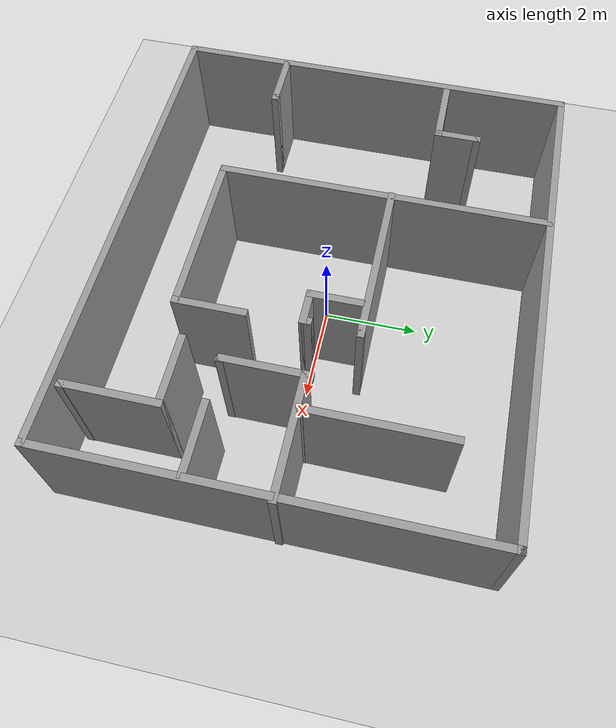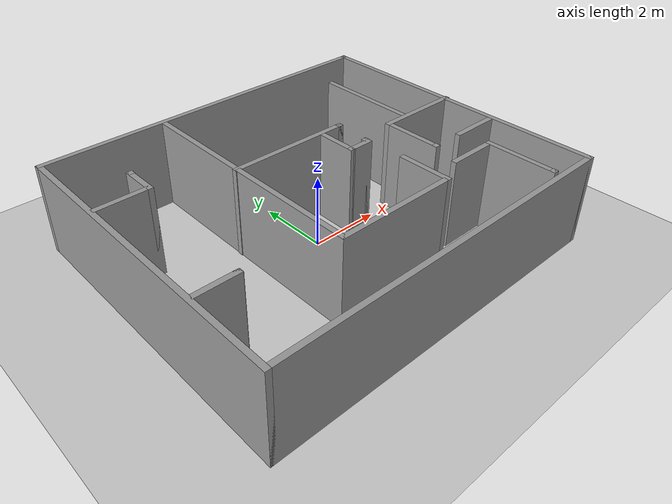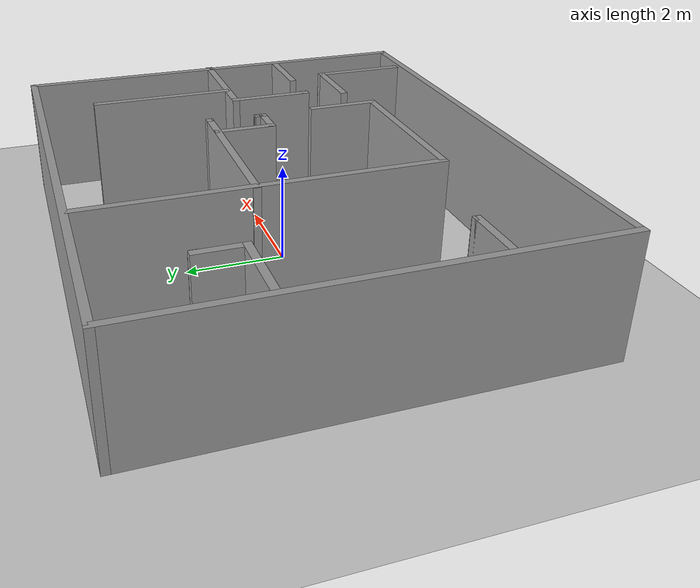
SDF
<?xml version="1.0" ?>

<sdf version="1.6">
  <world name="default">

    <include>
      <uri>model://sun</uri>
    </include>
    <include>
      <uri>model://ground_plane</uri>
    </include>
    <include>
      <pose>0 0 0.33 0 0 0</pose>
      <uri>model://rover</uri>
    </include>

    <include>
      <pose>0 0 0 0 0 0</pose>
      <uri>model://room</uri>
    </include>

  </world>
</sdf>

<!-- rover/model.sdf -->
<sdf version='1.6'>
  <model name='rover'>
    <link name='chassis'>
      <pose frame=''>-0 0 0.07 0 -0 0</pose>
      <inertial>
        <mass>1.14395</mass>
        <inertia>
          <ixx>0.126164</ixx>
          <ixy>0</ixy>
          <ixz>0</ixz>
          <iyy>0.416519</iyy>
          <iyz>0</iyz>
          <izz>0.481014</izz>
        </inertia>
        <pose frame=''>0 0 0 0 -0 0</pose>
      </inertial>
      <sensor name='sensor_ray' type='ray'>
        <pose frame=''>0 0 0.1 0 -0 0</pose>
        <ray>
          <scan>
            <horizontal>
              <samples>560</samples>
              <resolution>1</resolution>
              <min_angle>-3.14159</min_angle>
              <max_angle>3.139</max_angle>
            </horizontal>
            <vertical>
              <samples>1</samples>
              <min_angle>0</min_angle>
              <max_angle>0</max_angle>
            </vertical>
          </scan>
          <range>
            <min>0.05</min>
            <max>10</max>
          </range>
        </ray>
        <always_on>1</always_on>
        <visualize>0</visualize>
        <update_rate>100</update_rate>
        <plugin name='laser' filename='libgazebo_ros_ray_sensor.so'>
          <ros>
            <namespace>/rover</namespace>
            <remapping>~/out:=laser_scan</remapping>
          </ros>
          <output_type>sensor_msgs/LaserScan</output_type>
        </plugin>
      </sensor>
      <self_collide>0</self_collide>
      <enable_wind>0</enable_wind>
      <kinematic>0</kinematic>
      <gravity>1</gravity>
      <visual name='visual'>
        <geometry>
          <box>
            <size>0.3 0.15 0.08</size>
          </box>
        </geometry>
        <material>
          <shader type='pixel'>
            <normal_map>__default__</normal_map>
          </shader>
          <script>
            <name>ModelPreview_1::chassis::visual_MATERIAL_</name>
            <uri>__default__</uri>
          </script>
          <ambient>0.451 0.824 0.086 1</ambient>
          <diffuse>0 0 0 1</diffuse>
          <specular>0 0 0 1</specular>
          <emissive>0 0 0 1</emissive>
        </material>
        <pose frame=''>0 0 0 0 -0 0</pose>
        <transparency>0</transparency>
        <cast_shadows>1</cast_shadows>
      </visual>
      <collision name='collision'>
        <laser_retro>0</laser_retro>
        <max_contacts>10</max_contacts>
        <pose frame=''>0 0 0 0 -0 0</pose>
        <geometry>
          <box>
            <size>0.3 0.15 0.08</size>
          </box>
        </geometry>
        <surface>
          <friction>
            <ode>
              <mu>1</mu>
              <mu2>1</mu2>
              <fdir1>0 0 0</fdir1>
              <slip1>0</slip1>
              <slip2>0</slip2>
            </ode>
            <torsional>
              <coefficient>1</coefficient>
              <patch_radius>0</patch_radius>
              <surface_radius>0</surface_radius>
              <use_patch_radius>1</use_patch_radius>
              <ode>
                <slip>0</slip>
              </ode>
            </torsional>
          </friction>
          <bounce>
            <restitution_coefficient>0</restitution_coefficient>
            <threshold>1e+06</threshold>
          </bounce>
          <contact>
            <collide_without_contact>0</collide_without_contact>
            <collide_without_contact_bitmask>1</collide_without_contact_bitmask>
            <collide_bitmask>1</collide_bitmask>
            <ode>
              <soft_cfm>0</soft_cfm>
              <soft_erp>0.2</soft_erp>
              <kp>1e+13</kp>
              <kd>1</kd>
              <max_vel>0</max_vel>
              <min_depth>0</min_depth>
            </ode>
            <bullet>
              <split_impulse>1</split_impulse>
              <split_impulse_penetration_threshold>-0.01</split_impulse_penetration_threshold>
              <soft_cfm>0</soft_cfm>
              <soft_erp>0.2</soft_erp>
              <kp>1e+13</kp>
              <kd>1</kd>
            </bullet>
          </contact>
        </surface>
      </collision>
    </link>
    <link name='caster'>
      <pose frame=''>-0.15 -0 0.017 0 -0 0</pose>
      <inertial>
        <mass>1</mass>
        <inertia>
          <ixx>0.1</ixx>
          <ixy>0</ixy>
          <ixz>0</ixz>
          <iyy>0.1</iyy>
          <iyz>0</iyz>
          <izz>0.1</izz>
        </inertia>
        <pose frame=''>0 0 0 0 -0 0</pose>
      </inertial>
      <self_collide>0</self_collide>
      <enable_wind>0</enable_wind>
      <kinematic>0</kinematic>
      <gravity>1</gravity>
      <visual name='visual'>
        <geometry>
          <sphere>
            <radius>0.017</radius>
          </sphere>
        </geometry>
        <material>
          <shader type='pixel'>
            <normal_map>__default__</normal_map>
          </shader>
          <script>
            <name>ModelPreview_1::caster::visual_MATERIAL_</name>
            <uri>__default__</uri>
          </script>
          <ambient>0 0 0 1</ambient>
          <diffuse>0 0 0 1</diffuse>
          <specular>0 0 0 1</specular>
          <emissive>0 0 0 1</emissive>
        </material>
        <pose frame=''>0 0 0 0 -0 0</pose>
        <transparency>0</transparency>
        <cast_shadows>1</cast_shadows>
      </visual>
      <collision name='collision'>
        <laser_retro>0</laser_retro>
        <max_contacts>10</max_contacts>
        <pose frame=''>0 0 0 0 -0 0</pose>
        <geometry>
          <sphere>
            <radius>0.017</radius>
          </sphere>
        </geometry>
        <surface>
          <friction>
            <ode>
              <mu>0</mu>
              <mu2>0</mu2>
              <fdir1>0 0 0</fdir1>
              <slip1>1</slip1>
              <slip2>1</slip2>
            </ode>
            <torsional>
              <coefficient>1</coefficient>
              <patch_radius>0</patch_radius>
              <surface_radius>0</surface_radius>
              <use_patch_radius>1</use_patch_radius>
              <ode>
                <slip>0</slip>
              </ode>
            </torsional>
          </friction>
          <bounce>
            <restitution_coefficient>0</restitution_coefficient>
            <threshold>1e+06</threshold>
          </bounce>
          <contact>
            <collide_without_contact>0</collide_without_contact>
            <collide_without_contact_bitmask>1</collide_without_contact_bitmask>
            <collide_bitmask>1</collide_bitmask>
            <ode>
              <soft_cfm>0</soft_cfm>
              <soft_erp>0.2</soft_erp>
              <kp>1e+13</kp>
              <kd>1</kd>
              <max_vel>0</max_vel>
              <min_depth>0</min_depth>
            </ode>
            <bullet>
              <split_impulse>1</split_impulse>
              <split_impulse_penetration_threshold>-0.01</split_impulse_penetration_threshold>
              <soft_cfm>0</soft_cfm>
              <soft_erp>0.2</soft_erp>
              <kp>1e+13</kp>
              <kd>1</kd>
            </bullet>
          </contact>
        </surface>
      </collision>
    </link>
    <link name='left_wheel'>
      <pose frame=''>0.13 0.09 0.034 -1.5707 -0 -0</pose>
      <inertial>
        <mass>2</mass>
        <inertia>
          <ixx>0.145833</ixx>
          <ixy>0</ixy>
          <ixz>0</ixz>
          <iyy>0.145833</iyy>
          <iyz>0</iyz>
          <izz>0.125</izz>
        </inertia>
        <pose frame=''>0 0 0 0 -0 0</pose>
      </inertial>
      <self_collide>0</self_collide>
      <enable_wind>0</enable_wind>
      <kinematic>0</kinematic>
      <gravity>1</gravity>
      <visual name='visual'>
        <geometry>
          <cylinder>
            <radius>0.034</radius>
            <length>0.0269999</length>
          </cylinder>
        </geometry>
        <material>
          <shader type='pixel'>
            <normal_map>__default__</normal_map>
          </shader>
          <script>
            <name>ModelPreview_1::left_wheel::visual_MATERIAL_</name>
            <uri>__default__</uri>
          </script>
          <ambient>0 0 0 1</ambient>
          <diffuse>0 0 0 1</diffuse>
          <specular>0 0 0 1</specular>
          <emissive>0 0 0 1</emissive>
        </material>
        <pose frame=''>0 0 0 0 -0 0</pose>
        <transparency>0</transparency>
        <cast_shadows>1</cast_shadows>
      </visual>
      <collision name='collision'>
        <laser_retro>0</laser_retro>
        <max_contacts>10</max_contacts>
        <pose frame=''>0 0 0 0 -0 0</pose>
        <geometry>
          <cylinder>
            <radius>0.034</radius>
            <length>0.027</length>
          </cylinder>
        </geometry>
        <surface>
          <friction>
            <ode>
              <mu>1</mu>
              <mu2>1</mu2>
              <fdir1>0 0 0</fdir1>
              <slip1>0</slip1>
              <slip2>0</slip2>
            </ode>
            <torsional>
              <coefficient>1</coefficient>
              <patch_radius>0</patch_radius>
              <surface_radius>0</surface_radius>
              <use_patch_radius>1</use_patch_radius>
              <ode>
                <slip>0</slip>
              </ode>
            </torsional>
          </friction>
          <bounce>
            <restitution_coefficient>0</restitution_coefficient>
            <threshold>1e+06</threshold>
          </bounce>
          <contact>
            <collide_without_contact>0</collide_without_contact>
            <collide_without_contact_bitmask>1</collide_without_contact_bitmask>
            <collide_bitmask>1</collide_bitmask>
            <ode>
              <soft_cfm>0</soft_cfm>
              <soft_erp>0.2</soft_erp>
              <kp>1e+13</kp>
              <kd>1</kd>
              <max_vel>0</max_vel>
              <min_depth>0</min_depth>
            </ode>
            <bullet>
              <split_impulse>1</split_impulse>
              <split_impulse_penetration_threshold>-0.01</split_impulse_penetration_threshold>
              <soft_cfm>0</soft_cfm>
              <soft_erp>0.2</soft_erp>
              <kp>1e+13</kp>
              <kd>1</kd>
            </bullet>
          </contact>
        </surface>
      </collision>
    </link>
    <link name='right_wheel'>
      <pose frame=''>0.13 -0.09 0.034 -1.5707 -0 -0</pose>
      <inertial>
        <mass>2</mass>
        <inertia>
          <ixx>0.145833</ixx>
          <ixy>0</ixy>
          <ixz>0</ixz>
          <iyy>0.145833</iyy>
          <iyz>0</iyz>
          <izz>0.125</izz>
        </inertia>
        <pose frame=''>0 0 0 0 -0 0</pose>
      </inertial>
      <self_collide>0</self_collide>
      <enable_wind>0</enable_wind>
      <kinematic>0</kinematic>
      <gravity>1</gravity>
      <visual name='visual'>
        <geometry>
          <cylinder>
            <radius>0.034</radius>
            <length>0.027</length>
          </cylinder>
        </geometry>
        <material>
          <shader type='pixel'>
            <normal_map>__default__</normal_map>
          </shader>
          <script>
            <name>ModelPreview_1::right_wheel::visual_MATERIAL_</name>
            <uri>__default__</uri>
          </script>
          <ambient>0 0 0 1</ambient>
          <diffuse>0 0 0 1</diffuse>
          <specular>0 0 0 1</specular>
          <emissive>0 0 0 1</emissive>
        </material>
        <pose frame=''>0 0 0 0 -0 0</pose>
        <transparency>0</transparency>
        <cast_shadows>1</cast_shadows>
      </visual>
      <collision name='collision'>
        <laser_retro>0</laser_retro>
        <max_contacts>10</max_contacts>
        <pose frame=''>0 0 0 0 -0 0</pose>
        <geometry>
          <cylinder>
            <radius>0.034</radius>
            <length>0.027</length>
          </cylinder>
        </geometry>
        <surface>
          <friction>
            <ode>
              <mu>1</mu>
              <mu2>1</mu2>
              <fdir1>0 0 0</fdir1>
              <slip1>0</slip1>
              <slip2>0</slip2>
            </ode>
            <torsional>
              <coefficient>1</coefficient>
              <patch_radius>0</patch_radius>
              <surface_radius>0</surface_radius>
              <use_patch_radius>1</use_patch_radius>
              <ode>
                <slip>0</slip>
              </ode>
            </torsional>
          </friction>
          <bounce>
            <restitution_coefficient>0</restitution_coefficient>
            <threshold>1e+06</threshold>
          </bounce>
          <contact>
            <collide_without_contact>0</collide_without_contact>
            <collide_without_contact_bitmask>1</collide_without_contact_bitmask>
            <collide_bitmask>1</collide_bitmask>
            <ode>
              <soft_cfm>0</soft_cfm>
              <soft_erp>0.2</soft_erp>
              <kp>1e+13</kp>
              <kd>1</kd>
              <max_vel>0</max_vel>
              <min_depth>0</min_depth>
            </ode>
            <bullet>
              <split_impulse>1</split_impulse>
              <split_impulse_penetration_threshold>-0.01</split_impulse_penetration_threshold>
              <soft_cfm>0</soft_cfm>
              <soft_erp>0.2</soft_erp>
              <kp>1e+13</kp>
              <kd>1</kd>
            </bullet>
          </contact>
        </surface>
      </collision>
    </link>
    <joint name='caster_wheel' type='ball'>
      <parent>chassis</parent>
      <child>caster</child>
      <pose frame=''>0 0 0 0 -0 0</pose>
      <physics>
        <ode>
          <limit>
            <cfm>0</cfm>
            <erp>0.2</erp>
          </limit>
          <suspension>
            <cfm>0</cfm>
            <erp>0.2</erp>
          </suspension>
        </ode>
      </physics>
    </joint>
    <joint name='left_wheel_joint' type='revolute'>
      <parent>chassis</parent>
      <child>left_wheel</child>
      <pose frame=''>0 0 0 0 -0 0</pose>
      <axis>
        <xyz>0 0 1</xyz>
        <use_parent_model_frame>0</use_parent_model_frame>
        <limit>
          <lower>-1.79769e+308</lower>
          <upper>1.79769e+308</upper>
          <effort>-1</effort>
          <velocity>-1</velocity>
        </limit>
        <dynamics>
          <spring_reference>0</spring_reference>
          <spring_stiffness>0</spring_stiffness>
          <damping>0</damping>
          <friction>0</friction>
        </dynamics>
      </axis>
      <physics>
        <ode>
          <limit>
            <cfm>0</cfm>
            <erp>0.2</erp>
          </limit>
          <suspension>
            <cfm>0</cfm>
            <erp>0.2</erp>
          </suspension>
        </ode>
      </physics>
    </joint>
    <joint name='right_wheel_joint' type='revolute'>
      <parent>chassis</parent>
      <child>right_wheel</child>
      <pose frame=''>0 0 0 0 -0 0</pose>
      <axis>
        <xyz>0 0 1</xyz>
        <use_parent_model_frame>0</use_parent_model_frame>
        <limit>
          <lower>-1.79769e+308</lower>
          <upper>1.79769e+308</upper>
          <effort>-1</effort>
          <velocity>-1</velocity>
        </limit>
        <dynamics>
          <spring_reference>0</spring_reference>
          <spring_stiffness>0</spring_stiffness>
          <damping>0</damping>
          <friction>0</friction>
        </dynamics>
      </axis>
      <physics>
        <ode>
          <limit>
            <cfm>0</cfm>
            <erp>0.2</erp>
          </limit>
          <suspension>
            <cfm>0</cfm>
            <erp>0.2</erp>
          </suspension>
        </ode>
      </physics>
    </joint>
    <static>0</static>
    <allow_auto_disable>1</allow_auto_disable>
    <plugin name='diff_drive' filename='libgazebo_ros_diff_drive.so'>
      <ros>
        <namespace>/rover</namespace>
        <remapping>cmd_vel:=cmd_vel</remapping>
        <remapping>odom:=odom</remapping>
      </ros>
      <left_joint>left_wheel_joint</left_joint>
      <right_joint>right_wheel_joint</right_joint>
      <wheel_separation>0.15</wheel_separation>
      <wheel_diameter>0.06</wheel_diameter>
      <max_wheel_torque>20</max_wheel_torque>
      <max_wheel_acceleration>1.0</max_wheel_acceleration>
      <publish_odom>1</publish_odom>
      <publish_odom_tf>1</publish_odom_tf>
      <publish_wheel_tf>1</publish_wheel_tf>
      <odometry_frame>odom</odometry_frame>
      <robot_base_frame>chassis</robot_base_frame>
    </plugin>
  </model>
</sdf>

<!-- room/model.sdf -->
<sdf version='1.6'>
  <model name='room'>
    <pose frame=''>1.92405 -0.118331 0 0 -0 0</pose>
    <link name='Wall_0'>
      <collision name='Wall_0_Collision'>
        <geometry>
          <box>
            <size>10.25 0.15 2.5</size>
          </box>
        </geometry>
        <pose frame=''>0 0 1.25 0 -0 0</pose>
      </collision>
      <visual name='Wall_0_Visual'>
        <pose frame=''>0 0 1.25 0 -0 0</pose>
        <geometry>
          <box>
            <size>10.25 0.15 2.5</size>
          </box>
        </geometry>
        <material>
          <script>
            <uri>file://media/materials/scripts/gazebo.material</uri>
            <name>Gazebo/Grey</name>
          </script>
          <ambient>1 1 1 1</ambient>
        </material>
        <meta>
          <layer>0</layer>
        </meta>
      </visual>
      <pose frame=''>-0.020113 4.3 0 0 -0 3.14159</pose>
    </link>
    <link name='Wall_1'>
      <collision name='Wall_1_Collision'>
        <geometry>
          <box>
            <size>8.75 0.15 2.5</size>
          </box>
        </geometry>
        <pose frame=''>0 0 1.25 0 -0 0</pose>
      </collision>
      <visual name='Wall_1_Visual'>
        <pose frame=''>0 0 1.25 0 -0 0</pose>
        <geometry>
          <box>
            <size>8.75 0.15 2.5</size>
          </box>
        </geometry>
        <material>
          <script>
            <uri>file://media/materials/scripts/gazebo.material</uri>
            <name>Gazebo/Grey</name>
          </script>
          <ambient>1 1 1 1</ambient>
        </material>
        <meta>
          <layer>0</layer>
        </meta>
      </visual>
      <pose frame=''>-5.07011 0 0 0 -0 -1.5708</pose>
    </link>
    <link name='Wall_10'>
      <collision name='Wall_10_Collision'>
        <geometry>
          <box>
            <size>3.5 0.15 2.5</size>
          </box>
        </geometry>
        <pose frame=''>0 0 1.25 0 -0 0</pose>
      </collision>
      <visual name='Wall_10_Visual'>
        <pose frame=''>0 0 1.25 0 -0 0</pose>
        <geometry>
          <box>
            <size>3.5 0.15 2.5</size>
          </box>
        </geometry>
        <material>
          <script>
            <uri>file://media/materials/scripts/gazebo.material</uri>
            <name>Gazebo/Grey</name>
          </script>
          <ambient>1 1 1 1</ambient>
        </material>
        <meta>
          <layer>0</layer>
        </meta>
      </visual>
      <pose frame=''>0.007067 1.02149 0 0 -0 0</pose>
    </link>
    <link name='Wall_11'>
      <collision name='Wall_11_Collision'>
        <geometry>
          <box>
            <size>0.16 0.15 2.5</size>
          </box>
        </geometry>
        <pose frame=''>0 0 1.25 0 -0 0</pose>
      </collision>
      <visual name='Wall_11_Visual'>
        <pose frame=''>0 0 1.25 0 -0 0</pose>
        <geometry>
          <box>
            <size>0.16 0.15 2.5</size>
          </box>
        </geometry>
        <material>
          <script>
            <uri>file://media/materials/scripts/gazebo.material</uri>
            <name>Gazebo/Grey</name>
          </script>
          <ambient>1 1 1 1</ambient>
        </material>
        <meta>
          <layer>0</layer>
        </meta>
      </visual>
      <pose frame=''>1.68707 1.02149 0 0 -0 0</pose>
    </link>
    <link name='Wall_13'>
      <collision name='Wall_13_Collision'>
        <geometry>
          <box>
            <size>1.25 0.15 2.5</size>
          </box>
        </geometry>
        <pose frame=''>0 0 1.25 0 -0 0</pose>
      </collision>
      <visual name='Wall_13_Visual'>
        <pose frame=''>0 0 1.25 0 -0 0</pose>
        <geometry>
          <box>
            <size>1.25 0.15 2.5</size>
          </box>
        </geometry>
        <material>
          <script>
            <uri>file://media/materials/scripts/gazebo.material</uri>
            <name>Gazebo/Grey</name>
          </script>
          <ambient>1 1 1 1</ambient>
        </material>
        <meta>
          <layer>0</layer>
        </meta>
      </visual>
      <pose frame=''>1.02729 0.451374 0 0 -0 -1.5708</pose>
    </link>
    <link name='Wall_14'>
      <collision name='Wall_14_Collision'>
        <geometry>
          <box>
            <size>0.75 0.15 2.5</size>
          </box>
        </geometry>
        <pose frame=''>0 0 1.25 0 -0 0</pose>
      </collision>
      <visual name='Wall_14_Visual'>
        <pose frame=''>0 0 1.25 0 -0 0</pose>
        <geometry>
          <box>
            <size>0.75 0.15 2.5</size>
          </box>
        </geometry>
        <material>
          <script>
            <uri>file://media/materials/scripts/gazebo.material</uri>
            <name>Gazebo/Grey</name>
          </script>
          <ambient>1 1 1 1</ambient>
        </material>
        <meta>
          <layer>0</layer>
        </meta>
      </visual>
      <pose frame=''>1.32729 -0.098626 0 0 -0 0</pose>
    </link>
    <link name='Wall_15'>
      <collision name='Wall_15_Collision'>
        <geometry>
          <box>
            <size>0.25 0.15 2.5</size>
          </box>
        </geometry>
        <pose frame=''>0 0 1.25 0 -0 0</pose>
      </collision>
      <visual name='Wall_15_Visual'>
        <pose frame=''>0 0 1.25 0 -0 0</pose>
        <geometry>
          <box>
            <size>0.25 0.15 2.5</size>
          </box>
        </geometry>
        <material>
          <script>
            <uri>file://media/materials/scripts/gazebo.material</uri>
            <name>Gazebo/Grey</name>
          </script>
          <ambient>1 1 1 1</ambient>
        </material>
        <meta>
          <layer>0</layer>
        </meta>
      </visual>
      <pose frame=''>1.62729 -0.048626 0 0 -0 1.5708</pose>
    </link>
    <link name='Wall_16'>
      <collision name='Wall_16_Collision'>
        <geometry>
          <box>
            <size>0.16 0.15 2.5</size>
          </box>
        </geometry>
        <pose frame=''>0 0 1.25 0 -0 0</pose>
      </collision>
      <visual name='Wall_16_Visual'>
        <pose frame=''>0 0 1.25 0 -0 0</pose>
        <geometry>
          <box>
            <size>0.16 0.15 2.5</size>
          </box>
        </geometry>
        <material>
          <script>
            <uri>file://media/materials/scripts/gazebo.material</uri>
            <name>Gazebo/Grey</name>
          </script>
          <ambient>1 1 1 1</ambient>
        </material>
        <meta>
          <layer>0</layer>
        </meta>
      </visual>
      <pose frame=''>1.63229 0.001374 0 0 -0 0</pose>
    </link>
    <link name='Wall_18'>
      <collision name='Wall_18_Collision'>
        <geometry>
          <box>
            <size>3 0.15 2.5</size>
          </box>
        </geometry>
        <pose frame=''>0 0 1.25 0 -0 0</pose>
      </collision>
      <visual name='Wall_18_Visual'>
        <pose frame=''>0 0 1.25 0 -0 0</pose>
        <geometry>
          <box>
            <size>3 0.15 2.5</size>
          </box>
        </geometry>
        <material>
          <script>
            <uri>file://media/materials/scripts/gazebo.material</uri>
            <name>Gazebo/Grey</name>
          </script>
          <ambient>1 1 1 1</ambient>
        </material>
        <meta>
          <layer>0</layer>
        </meta>
      </visual>
      <pose frame=''>3.38057 1.66819 0 0 -0 -1.5708</pose>
    </link>
    <link name='Wall_19'>
      <collision name='Wall_19_Collision'>
        <geometry>
          <box>
            <size>0.16 0.15 2.5</size>
          </box>
        </geometry>
        <pose frame=''>0 0 1.25 0 -0 0</pose>
      </collision>
      <visual name='Wall_19_Visual'>
        <pose frame=''>0 0 1.25 0 -0 0</pose>
        <geometry>
          <box>
            <size>0.16 0.15 2.5</size>
          </box>
        </geometry>
        <material>
          <script>
            <uri>file://media/materials/scripts/gazebo.material</uri>
            <name>Gazebo/Grey</name>
          </script>
          <ambient>1 1 1 1</ambient>
        </material>
        <meta>
          <layer>0</layer>
        </meta>
      </visual>
      <pose frame=''>3.38557 0.243186 0 0 -0 0</pose>
    </link>
    <link name='Wall_2'>
      <collision name='Wall_2_Collision'>
        <geometry>
          <box>
            <size>10.25 0.15 2.5</size>
          </box>
        </geometry>
        <pose frame=''>0 0 1.25 0 -0 0</pose>
      </collision>
      <visual name='Wall_2_Visual'>
        <pose frame=''>0 0 1.25 0 -0 0</pose>
        <geometry>
          <box>
            <size>10.25 0.15 2.5</size>
          </box>
        </geometry>
        <material>
          <script>
            <uri>file://media/materials/scripts/gazebo.material</uri>
            <name>Gazebo/Grey</name>
          </script>
          <ambient>1 1 1 1</ambient>
        </material>
        <meta>
          <layer>0</layer>
        </meta>
      </visual>
      <pose frame=''>-0.020113 -4.3 0 0 -0 0</pose>
    </link>
    <link name='Wall_21'>
      <collision name='Wall_21_Collision'>
        <geometry>
          <box>
            <size>2.5 0.15 2.5</size>
          </box>
        </geometry>
        <pose frame=''>0 0 1.25 0 -0 0</pose>
      </collision>
      <visual name='Wall_21_Visual'>
        <pose frame=''>0 0 1.25 0 -0 0</pose>
        <geometry>
          <box>
            <size>2.5 0.15 2.5</size>
          </box>
        </geometry>
        <material>
          <script>
            <uri>file://media/materials/scripts/gazebo.material</uri>
            <name>Gazebo/Grey</name>
          </script>
          <ambient>1 1 1 1</ambient>
        </material>
        <meta>
          <layer>0</layer>
        </meta>
      </visual>
      <pose frame=''>3.89511 0.196831 0 0 -0 3.14159</pose>
    </link>
    <link name='Wall_22'>
      <collision name='Wall_22_Collision'>
        <geometry>
          <box>
            <size>1.75 0.15 2.5</size>
          </box>
        </geometry>
        <pose frame=''>0 0 1.25 0 -0 0</pose>
      </collision>
      <visual name='Wall_22_Visual'>
        <pose frame=''>0 0 1.25 0 -0 0</pose>
        <geometry>
          <box>
            <size>1.75 0.15 2.5</size>
          </box>
        </geometry>
        <material>
          <script>
            <uri>file://media/materials/scripts/gazebo.material</uri>
            <name>Gazebo/Grey</name>
          </script>
          <ambient>1 1 1 1</ambient>
        </material>
        <meta>
          <layer>0</layer>
        </meta>
      </visual>
      <pose frame=''>2.72011 -0.603169 0 0 -0 -1.5708</pose>
    </link>
    <link name='Wall_23'>
      <collision name='Wall_23_Collision'>
        <geometry>
          <box>
            <size>0.16 0.15 2.5</size>
          </box>
        </geometry>
        <pose frame=''>0 0 1.25 0 -0 0</pose>
      </collision>
      <visual name='Wall_23_Visual'>
        <pose frame=''>0 0 1.25 0 -0 0</pose>
        <geometry>
          <box>
            <size>0.16 0.15 2.5</size>
          </box>
        </geometry>
        <material>
          <script>
            <uri>file://media/materials/scripts/gazebo.material</uri>
            <name>Gazebo/Grey</name>
          </script>
          <ambient>1 1 1 1</ambient>
        </material>
        <meta>
          <layer>0</layer>
        </meta>
      </visual>
      <pose frame=''>2.72511 -1.40317 0 0 -0 0</pose>
    </link>
    <link name='Wall_25'>
      <collision name='Wall_25_Collision'>
        <geometry>
          <box>
            <size>1.5 0.15 2.5</size>
          </box>
        </geometry>
        <pose frame=''>0 0 1.25 0 -0 0</pose>
      </collision>
      <visual name='Wall_25_Visual'>
        <pose frame=''>0 0 1.25 0 -0 0</pose>
        <geometry>
          <box>
            <size>1.5 0.15 2.5</size>
          </box>
        </geometry>
        <material>
          <script>
            <uri>file://media/materials/scripts/gazebo.material</uri>
            <name>Gazebo/Grey</name>
          </script>
          <ambient>1 1 1 1</ambient>
        </material>
        <meta>
          <layer>0</layer>
        </meta>
      </visual>
      <pose frame=''>4.31705 -1.41225 0 0 -0 0</pose>
    </link>
    <link name='Wall_27'>
      <collision name='Wall_27_Collision'>
        <geometry>
          <box>
            <size>1.5 0.15 2.5</size>
          </box>
        </geometry>
        <pose frame=''>0 0 1.25 0 -0 0</pose>
      </collision>
      <visual name='Wall_27_Visual'>
        <pose frame=''>0 0 1.25 0 -0 0</pose>
        <geometry>
          <box>
            <size>1.5 0.15 2.5</size>
          </box>
        </geometry>
        <material>
          <script>
            <uri>file://media/materials/scripts/gazebo.material</uri>
            <name>Gazebo/Grey</name>
          </script>
          <ambient>1 1 1 1</ambient>
        </material>
        <meta>
          <layer>0</layer>
        </meta>
      </visual>
      <pose frame=''>-4.29156 1.72546 0 0 -0 0</pose>
    </link>
    <link name='Wall_28'>
      <collision name='Wall_28_Collision'>
        <geometry>
          <box>
            <size>1 0.15 2.5</size>
          </box>
        </geometry>
        <pose frame=''>0 0 1.25 0 -0 0</pose>
      </collision>
      <visual name='Wall_28_Visual'>
        <pose frame=''>0 0 1.25 0 -0 0</pose>
        <geometry>
          <box>
            <size>1 0.15 2.5</size>
          </box>
        </geometry>
        <material>
          <script>
            <uri>file://media/materials/scripts/gazebo.material</uri>
            <name>Gazebo/Grey</name>
          </script>
          <ambient>1 1 1 1</ambient>
        </material>
        <meta>
          <layer>0</layer>
        </meta>
      </visual>
      <pose frame=''>-3.61656 2.15046 0 0 -0 1.5708</pose>
    </link>
    <link name='Wall_29'>
      <collision name='Wall_29_Collision'>
        <geometry>
          <box>
            <size>0.16 0.15 2.5</size>
          </box>
        </geometry>
        <pose frame=''>0 0 1.25 0 -0 0</pose>
      </collision>
      <visual name='Wall_29_Visual'>
        <pose frame=''>0 0 1.25 0 -0 0</pose>
        <geometry>
          <box>
            <size>0.16 0.15 2.5</size>
          </box>
        </geometry>
        <material>
          <script>
            <uri>file://media/materials/scripts/gazebo.material</uri>
            <name>Gazebo/Grey</name>
          </script>
          <ambient>1 1 1 1</ambient>
        </material>
        <meta>
          <layer>0</layer>
        </meta>
      </visual>
      <pose frame=''>-3.61156 2.57546 0 0 -0 0</pose>
    </link>
    <link name='Wall_3'>
      <collision name='Wall_3_Collision'>
        <geometry>
          <box>
            <size>8.75 0.15 2.5</size>
          </box>
        </geometry>
        <pose frame=''>0 0 1.25 0 -0 0</pose>
      </collision>
      <visual name='Wall_3_Visual'>
        <pose frame=''>0 0 1.25 0 -0 0</pose>
        <geometry>
          <box>
            <size>8.75 0.15 2.5</size>
          </box>
        </geometry>
        <material>
          <script>
            <uri>file://media/materials/scripts/gazebo.material</uri>
            <name>Gazebo/Grey</name>
          </script>
          <ambient>1 1 1 1</ambient>
        </material>
        <meta>
          <layer>0</layer>
        </meta>
      </visual>
      <pose frame=''>5.02989 0 0 0 -0 1.5708</pose>
    </link>
    <link name='Wall_31'>
      <collision name='Wall_31_Collision'>
        <geometry>
          <box>
            <size>1.25 0.15 2.5</size>
          </box>
        </geometry>
        <pose frame=''>0 0 1.25 0 -0 0</pose>
      </collision>
      <visual name='Wall_31_Visual'>
        <pose frame=''>0 0 1.25 0 -0 0</pose>
        <geometry>
          <box>
            <size>1.25 0.15 2.5</size>
          </box>
        </geometry>
        <material>
          <script>
            <uri>file://media/materials/scripts/gazebo.material</uri>
            <name>Gazebo/Grey</name>
          </script>
          <ambient>1 1 1 1</ambient>
        </material>
        <meta>
          <layer>0</layer>
        </meta>
      </visual>
      <pose frame=''>-4.4769 -2.03578 0 0 -0 0</pose>
    </link>
    <link name='Wall_32'>
      <collision name='Wall_32_Collision'>
        <geometry>
          <box>
            <size>0.16 0.15 2.5</size>
          </box>
        </geometry>
        <pose frame=''>0 0 1.25 0 -0 0</pose>
      </collision>
      <visual name='Wall_32_Visual'>
        <pose frame=''>0 0 1.25 0 -0 0</pose>
        <geometry>
          <box>
            <size>0.16 0.15 2.5</size>
          </box>
        </geometry>
        <material>
          <script>
            <uri>file://media/materials/scripts/gazebo.material</uri>
            <name>Gazebo/Grey</name>
          </script>
          <ambient>1 1 1 1</ambient>
        </material>
        <meta>
          <layer>0</layer>
        </meta>
      </visual>
      <pose frame=''>-3.9219 -2.03578 0 0 -0 0</pose>
    </link>
    <link name='Wall_34'>
      <collision name='Wall_34_Collision'>
        <geometry>
          <box>
            <size>1.5 0.15 2.5</size>
          </box>
        </geometry>
        <pose frame=''>0 0 1.25 0 -0 0</pose>
      </collision>
      <visual name='Wall_34_Visual'>
        <pose frame=''>0 0 1.25 0 -0 0</pose>
        <geometry>
          <box>
            <size>1.5 0.15 2.5</size>
          </box>
        </geometry>
        <material>
          <script>
            <uri>file://media/materials/scripts/gazebo.material</uri>
            <name>Gazebo/Grey</name>
          </script>
          <ambient>1 1 1 1</ambient>
        </material>
        <meta>
          <layer>0</layer>
        </meta>
      </visual>
      <pose frame=''>3.15046 -2.2168 0 0 -0 0</pose>
    </link>
    <link name='Wall_35'>
      <collision name='Wall_35_Collision'>
        <geometry>
          <box>
            <size>2 0.15 2.5</size>
          </box>
        </geometry>
        <pose frame=''>0 0 1.25 0 -0 0</pose>
      </collision>
      <visual name='Wall_35_Visual'>
        <pose frame=''>0 0 1.25 0 -0 0</pose>
        <geometry>
          <box>
            <size>2 0.15 2.5</size>
          </box>
        </geometry>
        <material>
          <script>
            <uri>file://media/materials/scripts/gazebo.material</uri>
            <name>Gazebo/Grey</name>
          </script>
          <ambient>1 1 1 1</ambient>
        </material>
        <meta>
          <layer>0</layer>
        </meta>
      </visual>
      <pose frame=''>3.82546 -3.1418 0 0 -0 -1.5708</pose>
    </link>
    <link name='Wall_36'>
      <collision name='Wall_36_Collision'>
        <geometry>
          <box>
            <size>0.16 0.15 2.5</size>
          </box>
        </geometry>
        <pose frame=''>0 0 1.25 0 -0 0</pose>
      </collision>
      <visual name='Wall_36_Visual'>
        <pose frame=''>0 0 1.25 0 -0 0</pose>
        <geometry>
          <box>
            <size>0.16 0.15 2.5</size>
          </box>
        </geometry>
        <material>
          <script>
            <uri>file://media/materials/scripts/gazebo.material</uri>
            <name>Gazebo/Grey</name>
          </script>
          <ambient>1 1 1 1</ambient>
        </material>
        <meta>
          <layer>0</layer>
        </meta>
      </visual>
      <pose frame=''>3.83046 -4.0668 0 0 -0 0</pose>
    </link>
    <link name='Wall_4'>
      <collision name='Wall_4_Collision'>
        <geometry>
          <box>
            <size>0.15 0.15 2.5</size>
          </box>
        </geometry>
        <pose frame=''>0 0 1.25 0 -0 0</pose>
      </collision>
      <visual name='Wall_4_Visual'>
        <pose frame=''>0 0 1.25 0 -0 0</pose>
        <geometry>
          <box>
            <size>0.15 0.15 2.5</size>
          </box>
        </geometry>
        <material>
          <script>
            <uri>file://media/materials/scripts/gazebo.material</uri>
            <name>Gazebo/Grey</name>
          </script>
          <ambient>1 1 1 1</ambient>
        </material>
        <meta>
          <layer>0</layer>
        </meta>
      </visual>
      <pose frame=''>5.02989 4.3 0 0 -0 0</pose>
    </link>
    <link name='Wall_6'>
      <collision name='Wall_6_Collision'>
        <geometry>
          <box>
            <size>7 0.15 2.5</size>
          </box>
        </geometry>
        <pose frame=''>0 0 1.25 0 -0 0</pose>
      </collision>
      <visual name='Wall_6_Visual'>
        <pose frame=''>0 0 1.25 0 -0 0</pose>
        <geometry>
          <box>
            <size>7 0.15 2.5</size>
          </box>
        </geometry>
        <material>
          <script>
            <uri>file://media/materials/scripts/gazebo.material</uri>
            <name>Gazebo/Grey</name>
          </script>
          <ambient>1 1 1 1</ambient>
        </material>
        <meta>
          <layer>0</layer>
        </meta>
      </visual>
      <pose frame=''>-1.64782 0.834773 0 0 -0 -1.5708</pose>
    </link>
    <link name='Wall_7'>
      <collision name='Wall_7_Collision'>
        <geometry>
          <box>
            <size>3.5 0.15 2.5</size>
          </box>
        </geometry>
        <pose frame=''>0 0 1.25 0 -0 0</pose>
      </collision>
      <visual name='Wall_7_Visual'>
        <pose frame=''>0 0 1.25 0 -0 0</pose>
        <geometry>
          <box>
            <size>3.5 0.15 2.5</size>
          </box>
        </geometry>
        <material>
          <script>
            <uri>file://media/materials/scripts/gazebo.material</uri>
            <name>Gazebo/Grey</name>
          </script>
          <ambient>1 1 1 1</ambient>
        </material>
        <meta>
          <layer>0</layer>
        </meta>
      </visual>
      <pose frame=''>0.027181 -2.59023 0 0 -0 0</pose>
    </link>
    <link name='Wall_8'>
      <collision name='Wall_8_Collision'>
        <geometry>
          <box>
            <size>1.5 0.15 2.5</size>
          </box>
        </geometry>
        <pose frame=''>0 0 1.25 0 -0 0</pose>
      </collision>
      <visual name='Wall_8_Visual'>
        <pose frame=''>0 0 1.25 0 -0 0</pose>
        <geometry>
          <box>
            <size>1.5 0.15 2.5</size>
          </box>
        </geometry>
        <material>
          <script>
            <uri>file://media/materials/scripts/gazebo.material</uri>
            <name>Gazebo/Grey</name>
          </script>
          <ambient>1 1 1 1</ambient>
        </material>
        <meta>
          <layer>0</layer>
        </meta>
      </visual>
      <pose frame=''>1.70218 -1.91523 0 0 -0 1.5708</pose>
    </link>
    <static>1</static>
  </model>
</sdf>
